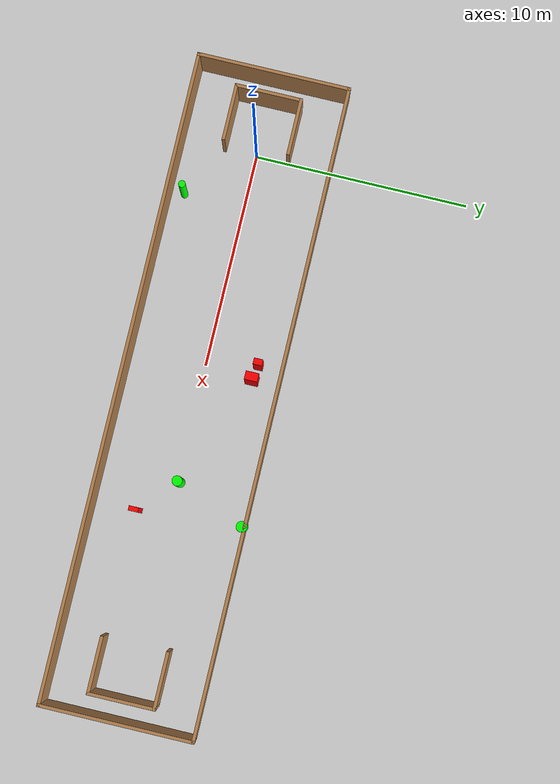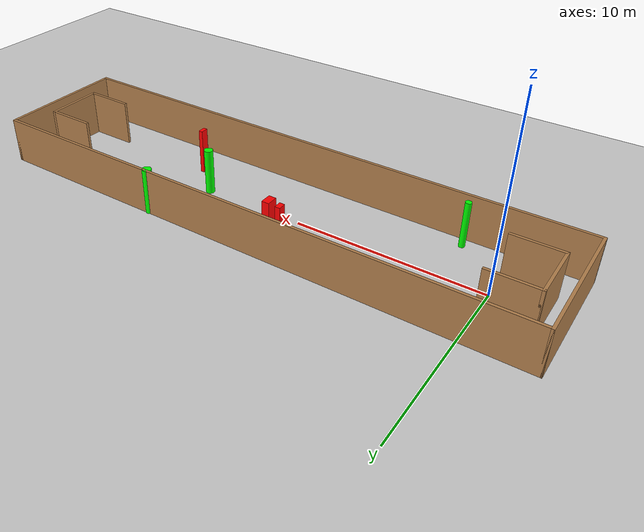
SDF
<sdf version="1.7">
 <world name="default">
  <light name="sun" type="directional">
   <pose>0 0 10 0 -0 0</pose>
   <diffuse>0.8 0.8 0.8 1</diffuse>
   <specular>0.2 0.2 0.2 1</specular>
   <attenuation>
    <range>1000</range>
    <constant>0.9</constant>
    <linear>0.01</linear>
    <quadratic>0.001</quadratic>
   </attenuation>
   <direction>-0.5 0.1 -0.9</direction>
   <spot><inner_angle>0</inner_angle><outer_angle>0</outer_angle><falloff>0</falloff></spot>
  </light>
  <model name="ground_plane">
   <static>1</static>
   <link name="link">
    <collision name="collision">
     <geometry><plane><normal>0 0 1</normal><size>100 100</size></plane></geometry>
     <surface>
      <contact><collide_bitmask>65535</collide_bitmask></contact>
      <friction><ode><mu>100</mu><mu2>50</mu2></ode></friction>
     </surface>
    </collision>
    <visual name="visual">
     <cast_shadows>0</cast_shadows>
     <geometry><plane><normal>0 0 1</normal><size>100 100</size></plane></geometry>
     <material>
      <script><uri>file://media/materials/scripts/gazebo.material</uri><name>Gazebo/Grey</name></script>
     </material>
    </visual>
   </link>
  </model>
  <gravity>0 0 -9.8</gravity>
  <magnetic_field>6e-06 2.3e-05 -4.2e-05</magnetic_field>
  <atmosphere type="adiabatic"/>
  <physics type="ode">
   <max_step_size>0.001</max_step_size>
   <real_time_factor>1</real_time_factor>
   <real_time_update_rate>1000</real_time_update_rate>
  </physics>
  <scene><ambient>0.4 0.4 0.4 1</ambient><background>0.7 0.7 0.7 1</background><shadows>1</shadows></scene>
  <spherical_coordinates>
   <surface_model>EARTH_WGS84</surface_model>
   <latitude_deg>0</latitude_deg>
   <longitude_deg>0</longitude_deg>
   <elevation>0</elevation>
   <heading_deg>0</heading_deg>
  </spherical_coordinates>
  <model name="my_base_walls">
   <link name="Wall_0">
    <collision name="Wall_0_Collision">
     <geometry><box><size>7.15 0.15 2.5</size></box></geometry>
     <pose>0 0 1.25 0 -0 0</pose>
    </collision>
    <visual name="Wall_0_Visual">
     <pose>0 0 1.25 0 -0 0</pose>
     <geometry><box><size>7.15 0.15 2.5</size></box></geometry>
     <material>
      <script><uri>file://media/materials/scripts/gazebo.material</uri><name>Gazebo/Wood</name></script>
      <ambient>1 1 1 1</ambient>
     </material>
     <meta><layer>0</layer></meta>
    </visual>
    <pose>-15 0 0 0 -0 1.5708</pose>
   </link>
   <link name="Wall_10">
    <collision name="Wall_10_Collision">
     <geometry><box><size>2.65 0.15 2.5</size></box></geometry>
     <pose>0 0 1.25 0 -0 0</pose>
    </collision>
    <visual name="Wall_10_Visual">
     <pose>0 0 1.25 0 -0 0</pose>
     <geometry><box><size>2.65 0.15 2.5</size></box></geometry>
     <material>
      <script><uri>file://media/materials/scripts/gazebo.material</uri><name>Gazebo/Wood</name></script>
      <ambient>1 1 1 1</ambient>
     </material>
     <meta><layer>0</layer></meta>
    </visual>
    <pose>-12.75 -1.5 0 0 -0 0</pose>
   </link>
   <link name="Wall_12">
    <collision name="Wall_12_Collision">
     <geometry><box><size>2.65 0.15 2.5</size></box></geometry>
     <pose>0 0 1.25 0 -0 0</pose>
    </collision>
    <visual name="Wall_12_Visual">
     <pose>0 0 1.25 0 -0 0</pose>
     <geometry><box><size>2.65 0.15 2.5</size></box></geometry>
     <material>
      <script><uri>file://media/materials/scripts/gazebo.material</uri><name>Gazebo/Wood</name></script>
      <ambient>1 1 1 1</ambient>
     </material>
     <meta><layer>0</layer></meta>
    </visual>
    <pose>-12.75 1.5 0 0 -0 0</pose>
   </link>
   <link name="Wall_14">
    <collision name="Wall_14_Collision">
     <geometry><box><size>3.15 0.15 2.5</size></box></geometry>
     <pose>0 0 1.25 0 -0 0</pose>
    </collision>
    <visual name="Wall_14_Visual">
     <pose>0 0 1.25 0 -0 0</pose>
     <geometry><box><size>3.15 0.15 2.5</size></box></geometry>
     <material>
      <script><uri>file://media/materials/scripts/gazebo.material</uri><name>Gazebo/Wood</name></script>
      <ambient>1 1 1 1</ambient>
     </material>
     <meta><layer>0</layer></meta>
    </visual>
    <pose>14 0 0 0 -0 -1.5708</pose>
   </link>
   <link name="Wall_15">
    <collision name="Wall_15_Collision">
     <geometry><box><size>2.65 0.15 2.5</size></box></geometry>
     <pose>0 0 1.25 0 -0 0</pose>
    </collision>
    <visual name="Wall_15_Visual">
     <pose>0 0 1.25 0 -0 0</pose>
     <geometry><box><size>2.65 0.15 2.5</size></box></geometry>
     <material>
      <script><uri>file://media/materials/scripts/gazebo.material</uri><name>Gazebo/Wood</name></script>
      <ambient>1 1 1 1</ambient>
     </material>
     <meta><layer>0</layer></meta>
    </visual>
    <pose>12.75 -1.5 0 0 -0 3.14159</pose>
   </link>
   <link name="Wall_17">
    <collision name="Wall_17_Collision">
     <geometry><box><size>2.65 0.15 2.5</size></box></geometry>
     <pose>0 0 1.25 0 -0 0</pose>
    </collision>
    <visual name="Wall_17_Visual">
     <pose>0 0 1.25 0 -0 0</pose>
     <geometry><box><size>2.65 0.15 2.5</size></box></geometry>
     <material>
      <script><uri>file://media/materials/scripts/gazebo.material</uri><name>Gazebo/Wood</name></script>
      <ambient>1 1 1 1</ambient>
     </material>
     <meta><layer>0</layer></meta>
    </visual>
    <pose>12.75 1.5 0 0 -0 3.14159</pose>
   </link>
   <link name="Wall_2">
    <collision name="Wall_2_Collision">
     <geometry><box><size>30.15 0.15 2.5</size></box></geometry>
     <pose>0 0 1.25 0 -0 0</pose>
    </collision>
    <visual name="Wall_2_Visual">
     <pose>0 0 1.25 0 -0 0</pose>
     <geometry><box><size>30.15 0.15 2.5</size></box></geometry>
     <material>
      <script><uri>file://media/materials/scripts/gazebo.material</uri><name>Gazebo/Wood</name></script>
      <ambient>1 1 1 1</ambient>
     </material>
     <meta><layer>0</layer></meta>
    </visual>
    <pose>-0 -3.5 0 0 -0 0</pose>
   </link>
   <link name="Wall_4">
    <collision name="Wall_4_Collision">
     <geometry><box><size>30.15 0.15 2.5</size></box></geometry>
     <pose>0 0 1.25 0 -0 0</pose>
    </collision>
    <visual name="Wall_4_Visual">
     <pose>0 0 1.25 0 -0 0</pose>
     <geometry><box><size>30.15 0.15 2.5</size></box></geometry>
     <material>
      <script><uri>file://media/materials/scripts/gazebo.material</uri><name>Gazebo/Wood</name></script>
      <ambient>1 1 1 1</ambient>
     </material>
     <meta><layer>0</layer></meta>
    </visual>
    <pose>-0 3.5 0 0 -0 0</pose>
   </link>
   <link name="Wall_6">
    <collision name="Wall_6_Collision">
     <geometry><box><size>7.15 0.15 2.5</size></box></geometry>
     <pose>0 0 1.25 0 -0 0</pose>
    </collision>
    <visual name="Wall_6_Visual">
     <pose>0 0 1.25 0 -0 0</pose>
     <geometry><box><size>7.15 0.15 2.5</size></box></geometry>
     <material>
      <script><uri>file://media/materials/scripts/gazebo.material</uri><name>Gazebo/Wood</name></script>
      <ambient>1 1 1 1</ambient>
     </material>
     <meta><layer>0</layer></meta>
    </visual>
    <pose>15 0 0 0 -0 -1.5708</pose>
   </link>
   <link name="Wall_9">
    <collision name="Wall_9_Collision">
     <geometry><box><size>3.15 0.15 2.5</size></box></geometry>
     <pose>0 0 1.25 0 -0 0</pose>
    </collision>
    <visual name="Wall_9_Visual">
     <pose>0 0 1.25 0 -0 0</pose>
     <geometry><box><size>3.15 0.15 2.5</size></box></geometry>
     <material>
      <script><uri>file://media/materials/scripts/gazebo.material</uri><name>Gazebo/Wood</name></script>
      <ambient>1 1 1 1</ambient>
     </material>
     <meta><layer>0</layer></meta>
    </visual>
    <pose>-14 0 0 0 -0 -1.5708</pose>
   </link>
   <static>1</static>
   <pose>11.5 0 0 0 -0 0</pose>
  </model>
  <model name="cylinder1">
   <static>1</static>
   <link name="link">
    <inertial>
     <mass>1</mass>
     <inertia><ixx>0.5</ixx><ixy>0</ixy><ixz>0</ixz><iyy>0.5</iyy><iyz>0</iyz><izz>1</izz></inertia>
    </inertial>
    <collision name="collision">
     <geometry><cylinder><radius>0.16198107522007774</radius><length>2.5</length></cylinder></geometry>
    </collision>
    <visual name="visual">
     <geometry><cylinder><radius>0.16198107522007774</radius><length>2.5</length></cylinder></geometry>
     <material>
      <ambient>0 1 0 1</ambient>
      <diffuse>0 1 0 1</diffuse>
      <specular>0.1 0.1 0.1 1</specular>
      <emissive>0 0 0 0</emissive>
     </material>
    </visual>
   </link>
   <pose>2.4834977163155934 -2.8393959547693797 1.25 0 0 0</pose>
  </model>
  <model name="cylinder2">
   <static>1</static>
   <link name="link">
    <inertial>
     <mass>1</mass>
     <inertia><ixx>0.5</ixx><ixy>0</ixy><ixz>0</ixz><iyy>0.5</iyy><iyz>0</iyz><izz>1</izz></inertia>
    </inertial>
    <collision name="collision">
     <geometry><cylinder><radius>0.2519141418192446</radius><length>2.5</length></cylinder></geometry>
    </collision>
    <visual name="visual">
     <geometry><cylinder><radius>0.2519141418192446</radius><length>2.5</length></cylinder></geometry>
     <material>
      <ambient>0 1 0 1</ambient>
      <diffuse>0 1 0 1</diffuse>
      <specular>0.1 0.1 0.1 1</specular>
      <emissive>0 0 0 0</emissive>
     </material>
    </visual>
   </link>
   <pose>16.82715349544013 3.3720308893709756 1.25 0 0 0</pose>
  </model>
  <model name="cylinder3">
   <static>1</static>
   <link name="link">
    <inertial>
     <mass>1</mass>
     <inertia><ixx>0.5</ixx><ixy>0</ixy><ixz>0</ixz><iyy>0.5</iyy><iyz>0</iyz><izz>1</izz></inertia>
    </inertial>
    <collision name="collision">
     <geometry><cylinder><radius>0.2336625199602274</radius><length>2.5</length></cylinder></geometry>
    </collision>
    <visual name="visual">
     <geometry><cylinder><radius>0.2336625199602274</radius><length>2.5</length></cylinder></geometry>
     <material>
      <ambient>0 1 0 1</ambient>
      <diffuse>0 1 0 1</diffuse>
      <specular>0.1 0.1 0.1 1</specular>
      <emissive>0 0 0 0</emissive>
     </material>
    </visual>
   </link>
   <pose>15.514207979050633 0.1078680246666317 1.25 0 0 0</pose>
  </model>
  <model name="box1">
   <static>1</static>
   <link name="link">
    <inertial>
     <mass>1</mass>
     <inertia><ixx>0.083</ixx><ixy>0</ixy><ixz>0</ixz><iyy>0.083</iyy><iyz>0</iyz><izz>0.083</izz></inertia>
    </inertial>
    <collision name="collision">
     <geometry><box><size>0.39016130552557393 0.5959763533064049 2.5</size></box></geometry>
    </collision>
    <visual name="visual">
     <geometry><box><size>0.39016130552557393 0.5959763533064049 2.5</size></box></geometry>
     <material>
      <ambient>1 0 0 1</ambient>
      <diffuse>1 0 0 1</diffuse>
      <specular>0.1 0.1 0.1 1</specular>
      <emissive>0 0 0 0</emissive>
     </material>
    </visual>
    <sensor name="my_contact" type="contact">
     <contact><collision>box_collision</collision><topic>__default_topic__</topic></contact>
    </sensor>
   </link>
   <pose>10.215984653661984 2.2387430437770437 1.25 0 0 0</pose>
  </model>
  <model name="box2">
   <static>1</static>
   <link name="link">
    <inertial>
     <mass>1</mass>
     <inertia><ixx>0.083</ixx><ixy>0</ixy><ixz>0</ixz><iyy>0.083</iyy><iyz>0</iyz><izz>0.083</izz></inertia>
    </inertial>
    <collision name="collision">
     <geometry><box><size>0.21683507446033734 0.43309419768979496 2.5</size></box></geometry>
    </collision>
    <visual name="visual">
     <geometry><box><size>0.21683507446033734 0.43309419768979496 2.5</size></box></geometry>
     <material>
      <ambient>1 0 0 1</ambient>
      <diffuse>1 0 0 1</diffuse>
      <specular>0.1 0.1 0.1 1</specular>
      <emissive>0 0 0 0</emissive>
     </material>
    </visual>
    <sensor name="my_contact" type="contact">
     <contact><collision>box_collision</collision><topic>__default_topic__</topic></contact>
    </sensor>
   </link>
   <pose>17.17292905291058 -1.4850541168485898 1.25 0 0 0</pose>
  </model>
  <model name="box3">
   <static>1</static>
   <link name="link">
    <inertial>
     <mass>1</mass>
     <inertia><ixx>0.083</ixx><ixy>0</ixy><ixz>0</ixz><iyy>0.083</iyy><iyz>0</iyz><izz>0.083</izz></inertia>
    </inertial>
    <collision name="collision">
     <geometry><box><size>0.28335549183696024 0.4151211995425069 2.5</size></box></geometry>
    </collision>
    <visual name="visual">
     <geometry><box><size>0.28335549183696024 0.4151211995425069 2.5</size></box></geometry>
     <material>
      <ambient>1 0 0 1</ambient>
      <diffuse>1 0 0 1</diffuse>
      <specular>0.1 0.1 0.1 1</specular>
      <emissive>0 0 0 0</emissive>
     </material>
    </visual>
    <sensor name="my_contact" type="contact">
     <contact><collision>box_collision</collision><topic>__default_topic__</topic></contact>
    </sensor>
   </link>
   <pose>9.514904384906643 2.370116700109638 1.25 0 0 0</pose>
  </model>
 </world>
</sdf>
